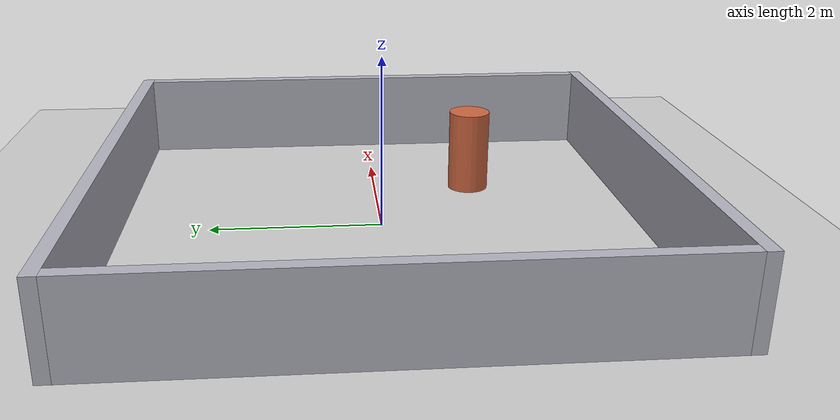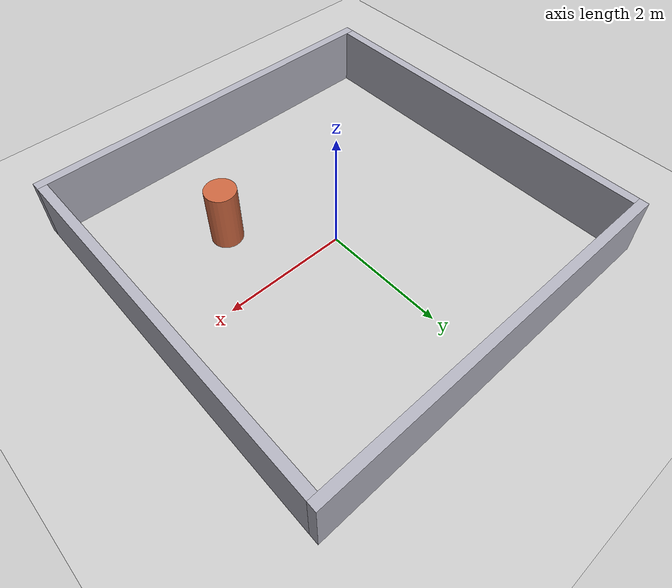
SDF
<?xml version="1.0" ?>
<sdf version="1.7">
  <world name="katman0_oda">

    <!-- ─── Sistem eklentileri (Fortress isimlendirmesi) ─── -->
    <plugin filename="ignition-gazebo-physics-system"
            name="ignition::gazebo::systems::Physics"/>
    <plugin filename="ignition-gazebo-user-commands-system"
            name="ignition::gazebo::systems::UserCommands"/>
    <plugin filename="ignition-gazebo-scene-broadcaster-system"
            name="ignition::gazebo::systems::SceneBroadcaster"/>
    <plugin filename="ignition-gazebo-sensors-system"
            name="ignition::gazebo::systems::Sensors">
      <render_engine>ogre2</render_engine>
    </plugin>
    <plugin filename="ignition-gazebo-imu-system"
            name="ignition::gazebo::systems::Imu"/>
    <plugin filename="ignition-gazebo-contact-system"
            name="ignition::gazebo::systems::Contact"/>

    <!-- ─── Fizik ve ortam ─── -->
    <gravity>0 0 -9.8</gravity>
    <magnetic_field>6e-06 2.3e-05 -4.2e-05</magnetic_field>
    <atmosphere type="adiabatic"/>

    <scene>
      <ambient>0.4 0.4 0.4 1</ambient>
      <background>0.7 0.7 0.7 1</background>
      <sky/>
    </scene>

    <light type="directional" name="sun">
      <direction>-0.5 0.1 -0.9</direction>
      <cast_shadows>true</cast_shadows>
      <pose>0 0 10 0 0 0</pose>
    </light>

    <!-- ═══════════════ ZEMIN ═══════════════ -->
    <model name="ground_plane">
      <static>true</static>
      <link name="link">
        <collision name="collision">
          <geometry>
            <plane>
              <normal>0 0 1</normal>
              <size>100 100</size>
            </plane>
          </geometry>
          <surface>
            <friction>
              <ode>
                <mu>100</mu>
                <mu2>50</mu2>
              </ode>
            </friction>
          </surface>
        </collision>
        <visual name="visual">
          <geometry>
            <plane>
              <normal>0 0 1</normal>
              <size>100 100</size>
            </plane>
          </geometry>
          <material>
            <ambient>0.8 0.8 0.8 1</ambient>
            <diffuse>0.8 0.8 0.8 1</diffuse>
            <specular>0.8 0.8 0.8 1</specular>
          </material>
        </visual>
      </link>
    </model>

    <!-- KUZEY duvari (+Y yonu) -->
    <model name="wall_north">
      <static>true</static>
      <pose>0 3.075 0.5 0 0 0</pose>
      <link name="link">
        <collision name="collision">
          <geometry>
            <box><size>6.3 0.15 1.0</size></box>
          </geometry>
        </collision>
        <visual name="visual">
          <geometry>
            <box><size>6.3 0.15 1.0</size></box>
          </geometry>
          <material>
            <ambient>0.6 0.6 0.65 1</ambient>
            <diffuse>0.7 0.7 0.75 1</diffuse>
          </material>
        </visual>
      </link>
    </model>

    <!-- GUNEY duvari (-Y yonu) -->
    <model name="wall_south">
      <static>true</static>
      <pose>0 -3.075 0.5 0 0 0</pose>
      <link name="link">
        <collision name="collision">
          <geometry>
            <box><size>6.3 0.15 1.0</size></box>
          </geometry>
        </collision>
        <visual name="visual">
          <geometry>
            <box><size>6.3 0.15 1.0</size></box>
          </geometry>
          <material>
            <ambient>0.6 0.6 0.65 1</ambient>
            <diffuse>0.7 0.7 0.75 1</diffuse>
          </material>
        </visual>
      </link>
    </model>

    <!-- DOGU duvari (+X yonu) -->
    <model name="wall_east">
      <static>true</static>
      <pose>3.075 0 0.5 0 0 0</pose>
      <link name="link">
        <collision name="collision">
          <geometry>
            <box><size>0.15 6.0 1.0</size></box>
          </geometry>
        </collision>
        <visual name="visual">
          <geometry>
            <box><size>0.15 6.0 1.0</size></box>
          </geometry>
          <material>
            <ambient>0.6 0.6 0.65 1</ambient>
            <diffuse>0.7 0.7 0.75 1</diffuse>
          </material>
        </visual>
      </link>
    </model>

    <!-- BATI duvari (-X yonu) -->
    <model name="wall_west">
      <static>true</static>
      <pose>-3.075 0 0.5 0 0 0</pose>
      <link name="link">
        <collision name="collision">
          <geometry>
            <box><size>0.15 6.0 1.0</size></box>
          </geometry>
        </collision>
        <visual name="visual">
          <geometry>
            <box><size>0.15 6.0 1.0</size></box>
          </geometry>
          <material>
            <ambient>0.6 0.6 0.65 1</ambient>
            <diffuse>0.7 0.7 0.75 1</diffuse>
          </material>
        </visual>
      </link>
    </model>

    <model name="pillar_center">
      <static>true</static>
      <pose>1.2 -1.2 0.5 0 0 0</pose>
      <link name="link">
        <collision name="collision">
          <geometry>
            <cylinder>
              <radius>0.25</radius>
              <length>1.0</length>
            </cylinder>
          </geometry>
        </collision>
        <visual name="visual">
          <geometry>
            <cylinder>
              <radius>0.25</radius>
              <length>1.0</length>
            </cylinder>
          </geometry>
          <material>
            <ambient>0.7 0.35 0.2 1</ambient>
            <diffuse>0.8 0.4 0.25 1</diffuse>
          </material>
        </visual>
      </link>
    </model>

  </world>
</sdf>
